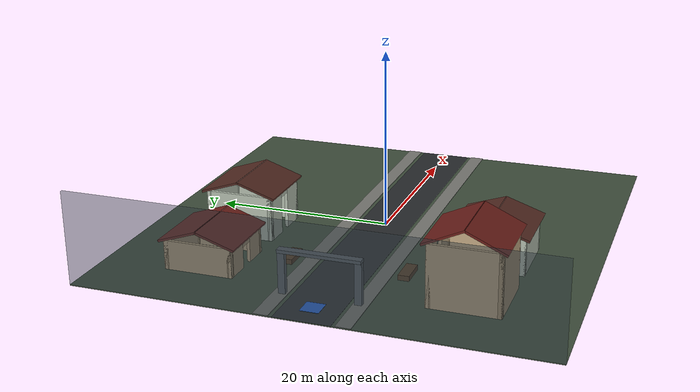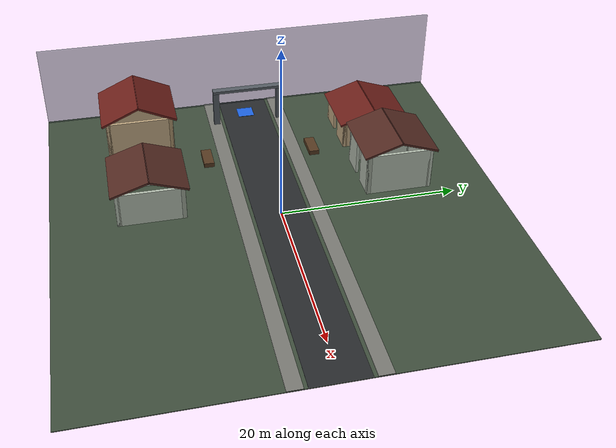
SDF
<sdf version="1.6">
 <world name="ego_residential_gable_50x50x10">
  <include><uri>model://sun</uri></include>
  <model name="community_floor">
   <static>true</static>
   <pose>0.000 0.000 -0.050 0 0 0</pose>
   <link name="link">
    <collision name="collision"><geometry><box><size>50.000 50.000 0.100</size></box></geometry></collision>
    <visual name="visual">
     <geometry><box><size>50.000 50.000 0.100</size></box></geometry>
     <material><ambient>0.250 0.310 0.240 1.000</ambient><diffuse>0.250 0.310 0.240 1.000</diffuse></material>
     <transparency>0.00</transparency>
    </visual>
   </link>
  </model>
  <model name="central_road">
   <static>true</static>
   <pose>0.000 0.000 0.010 0 0 0</pose>
   <link name="link">
    <collision name="collision"><geometry><box><size>50.000 6.000 0.020</size></box></geometry></collision>
    <visual name="visual">
     <geometry><box><size>50.000 6.000 0.020</size></box></geometry>
     <material><ambient>0.160 0.170 0.180 1.000</ambient><diffuse>0.160 0.170 0.180 1.000</diffuse></material>
     <transparency>0.00</transparency>
    </visual>
   </link>
  </model>
  <model name="north_sidewalk">
   <static>true</static>
   <pose>0.000 4.200 0.040 0 0 0</pose>
   <link name="link">
    <collision name="collision"><geometry><box><size>50.000 1.600 0.080</size></box></geometry></collision>
    <visual name="visual">
     <geometry><box><size>50.000 1.600 0.080</size></box></geometry>
     <material><ambient>0.480 0.480 0.460 1.000</ambient><diffuse>0.480 0.480 0.460 1.000</diffuse></material>
     <transparency>0.00</transparency>
    </visual>
   </link>
  </model>
  <model name="south_sidewalk">
   <static>true</static>
   <pose>0.000 -4.200 0.040 0 0 0</pose>
   <link name="link">
    <collision name="collision"><geometry><box><size>50.000 1.600 0.080</size></box></geometry></collision>
    <visual name="visual">
     <geometry><box><size>50.000 1.600 0.080</size></box></geometry>
     <material><ambient>0.480 0.480 0.460 1.000</ambient><diffuse>0.480 0.480 0.460 1.000</diffuse></material>
     <transparency>0.00</transparency>
    </visual>
   </link>
  </model>
  <model name="west_boundary">
   <static>true</static>
   <pose>-24.850 0.000 5.000 0 0 0</pose>
   <link name="link">
    <collision name="collision"><geometry><box><size>0.300 50.000 10.000</size></box></geometry></collision>
    <visual name="visual">
     <geometry><box><size>0.300 50.000 10.000</size></box></geometry>
     <material><ambient>0.200 0.250 0.280 1.000</ambient><diffuse>0.200 0.250 0.280 1.000</diffuse></material>
     <transparency>0.55</transparency>
    </visual>
   </link>
  </model>
  <model name="west_spawn_pad">
   <static>true</static>
   <pose>-22.000 0.000 0.030 0 0 0</pose>
   <link name="link">
    <collision name="collision"><geometry><box><size>2.000 2.000 0.060</size></box></geometry></collision>
    <visual name="visual">
     <geometry><box><size>2.000 2.000 0.060</size></box></geometry>
     <material><ambient>0.120 0.400 0.900 1.000</ambient><diffuse>0.120 0.400 0.900 1.000</diffuse></material>
     <transparency>0.00</transparency>
    </visual>
   </link>
  </model>
  <model name="west_gate_left_post">
   <static>true</static>
   <pose>-20.000 -4.000 2.250 0 0 0</pose>
   <link name="link">
    <collision name="collision"><geometry><box><size>0.550 0.750 4.500</size></box></geometry></collision>
    <visual name="visual">
     <geometry><box><size>0.550 0.750 4.500</size></box></geometry>
     <material><ambient>0.340 0.370 0.400 1.000</ambient><diffuse>0.340 0.370 0.400 1.000</diffuse></material>
     <transparency>0.00</transparency>
    </visual>
   </link>
  </model>
  <model name="west_gate_right_post">
   <static>true</static>
   <pose>-20.000 4.000 2.250 0 0 0</pose>
   <link name="link">
    <collision name="collision"><geometry><box><size>0.550 0.750 4.500</size></box></geometry></collision>
    <visual name="visual">
     <geometry><box><size>0.550 0.750 4.500</size></box></geometry>
     <material><ambient>0.340 0.370 0.400 1.000</ambient><diffuse>0.340 0.370 0.400 1.000</diffuse></material>
     <transparency>0.00</transparency>
    </visual>
   </link>
  </model>
  <model name="west_gate_roof">
   <static>true</static>
   <pose>-20.000 0.000 4.650 0 0 0</pose>
   <link name="link">
    <collision name="collision"><geometry><box><size>0.850 8.750 0.350</size></box></geometry></collision>
    <visual name="visual">
     <geometry><box><size>0.850 8.750 0.350</size></box></geometry>
     <material><ambient>0.340 0.370 0.400 1.000</ambient><diffuse>0.340 0.370 0.400 1.000</diffuse></material>
     <transparency>0.00</transparency>
    </visual>
   </link>
  </model>
  <model name="south_planter_1">
   <static>true</static>
   <pose>-12.000 -6.400 0.280 0 0 0</pose>
   <link name="link">
    <collision name="collision"><geometry><box><size>3.000 1.200 0.560</size></box></geometry></collision>
    <visual name="visual">
     <geometry><box><size>3.000 1.200 0.560</size></box></geometry>
     <material><ambient>0.340 0.230 0.130 1.000</ambient><diffuse>0.340 0.230 0.130 1.000</diffuse></material>
     <transparency>0.00</transparency>
    </visual>
   </link>
  </model>
  <model name="north_planter_1">
   <static>true</static>
   <pose>-12.000 6.400 0.280 0 0 0</pose>
   <link name="link">
    <collision name="collision"><geometry><box><size>3.000 1.200 0.560</size></box></geometry></collision>
    <visual name="visual">
     <geometry><box><size>3.000 1.200 0.560</size></box></geometry>
     <material><ambient>0.340 0.230 0.130 1.000</ambient><diffuse>0.340 0.230 0.130 1.000</diffuse></material>
     <transparency>0.00</transparency>
    </visual>
   </link>
  </model>
  <model name="residence_01">
   <static>true</static>
   <pose>-15.000 14.000 0 0 0 0</pose>
   <link name="building_link">
    <collision name="roof_north_collision">
     <pose>0.000 2.075 3.900 -0.325361 0.000000 0.000000</pose>
     <geometry><box><size>7.900 4.560 0.240</size></box></geometry>
    </collision>
    <visual name="roof_north_visual">
     <pose>0.000 2.075 3.900 -0.325361 0.000000 0.000000</pose>
     <geometry><box><size>7.900 4.560 0.240</size></box></geometry>
     <material><ambient>0.420 0.120 0.100 1.000</ambient><diffuse>0.420 0.120 0.100 1.000</diffuse></material>
    </visual>
    <collision name="roof_south_collision">
     <pose>0.000 -2.075 3.900 0.325361 0.000000 0.000000</pose>
     <geometry><box><size>7.900 4.560 0.240</size></box></geometry>
    </collision>
    <visual name="roof_south_visual">
     <pose>0.000 -2.075 3.900 0.325361 0.000000 0.000000</pose>
     <geometry><box><size>7.900 4.560 0.240</size></box></geometry>
     <material><ambient>0.420 0.120 0.100 1.000</ambient><diffuse>0.420 0.120 0.100 1.000</diffuse></material>
    </visual>
    <collision name="back_wall_collision">
     <pose>0.000 3.630 1.600 0.000000 0.000000 0.000000</pose>
     <geometry><box><size>7.200 0.340 3.200</size></box></geometry>
    </collision>
    <visual name="back_wall_visual">
     <pose>0.000 3.630 1.600 0.000000 0.000000 0.000000</pose>
     <geometry><box><size>7.200 0.340 3.200</size></box></geometry>
     <material><ambient>0.780 0.680 0.530 1.000</ambient><diffuse>0.780 0.680 0.530 1.000</diffuse></material>
    </visual>
    <collision name="left_wall_collision">
     <pose>-3.430 0.000 1.600 0.000000 0.000000 0.000000</pose>
     <geometry><box><size>0.340 7.600 3.200</size></box></geometry>
    </collision>
    <visual name="left_wall_visual">
     <pose>-3.430 0.000 1.600 0.000000 0.000000 0.000000</pose>
     <geometry><box><size>0.340 7.600 3.200</size></box></geometry>
     <material><ambient>0.780 0.680 0.530 1.000</ambient><diffuse>0.780 0.680 0.530 1.000</diffuse></material>
    </visual>
    <collision name="right_wall_collision">
     <pose>3.430 0.000 1.600 0.000000 0.000000 0.000000</pose>
     <geometry><box><size>0.340 7.600 3.200</size></box></geometry>
    </collision>
    <visual name="right_wall_visual">
     <pose>3.430 0.000 1.600 0.000000 0.000000 0.000000</pose>
     <geometry><box><size>0.340 7.600 3.200</size></box></geometry>
     <material><ambient>0.780 0.680 0.530 1.000</ambient><diffuse>0.780 0.680 0.530 1.000</diffuse></material>
    </visual>
    <collision name="front_left_collision">
     <pose>-2.200 -3.630 1.600 0.000000 0.000000 0.000000</pose>
     <geometry><box><size>2.800 0.340 3.200</size></box></geometry>
    </collision>
    <visual name="front_left_visual">
     <pose>-2.200 -3.630 1.600 0.000000 0.000000 0.000000</pose>
     <geometry><box><size>2.800 0.340 3.200</size></box></geometry>
     <material><ambient>0.780 0.680 0.530 1.000</ambient><diffuse>0.780 0.680 0.530 1.000</diffuse></material>
    </visual>
    <collision name="front_right_collision">
     <pose>2.200 -3.630 1.600 0.000000 0.000000 0.000000</pose>
     <geometry><box><size>2.800 0.340 3.200</size></box></geometry>
    </collision>
    <visual name="front_right_visual">
     <pose>2.200 -3.630 1.600 0.000000 0.000000 0.000000</pose>
     <geometry><box><size>2.800 0.340 3.200</size></box></geometry>
     <material><ambient>0.780 0.680 0.530 1.000</ambient><diffuse>0.780 0.680 0.530 1.000</diffuse></material>
    </visual>
    <collision name="door_lintel_collision">
     <pose>0.000 -3.630 2.750 0.000000 0.000000 0.000000</pose>
     <geometry><box><size>1.600 0.340 0.900</size></box></geometry>
    </collision>
    <visual name="door_lintel_visual">
     <pose>0.000 -3.630 2.750 0.000000 0.000000 0.000000</pose>
     <geometry><box><size>1.600 0.340 0.900</size></box></geometry>
     <material><ambient>0.780 0.680 0.530 1.000</ambient><diffuse>0.780 0.680 0.530 1.000</diffuse></material>
    </visual>
    <collision name="pillar_1_collision">
     <pose>-3.360 -3.560 1.600 0.000000 0.000000 0.000000</pose>
     <geometry><box><size>0.480 0.480 3.200</size></box></geometry>
    </collision>
    <visual name="pillar_1_visual">
     <pose>-3.360 -3.560 1.600 0.000000 0.000000 0.000000</pose>
     <geometry><box><size>0.480 0.480 3.200</size></box></geometry>
     <material><ambient>0.680 0.580 0.430 1.000</ambient><diffuse>0.680 0.580 0.430 1.000</diffuse></material>
    </visual>
    <collision name="pillar_2_collision">
     <pose>-3.360 3.560 1.600 0.000000 0.000000 0.000000</pose>
     <geometry><box><size>0.480 0.480 3.200</size></box></geometry>
    </collision>
    <visual name="pillar_2_visual">
     <pose>-3.360 3.560 1.600 0.000000 0.000000 0.000000</pose>
     <geometry><box><size>0.480 0.480 3.200</size></box></geometry>
     <material><ambient>0.680 0.580 0.430 1.000</ambient><diffuse>0.680 0.580 0.430 1.000</diffuse></material>
    </visual>
    <collision name="pillar_3_collision">
     <pose>3.360 -3.560 1.600 0.000000 0.000000 0.000000</pose>
     <geometry><box><size>0.480 0.480 3.200</size></box></geometry>
    </collision>
    <visual name="pillar_3_visual">
     <pose>3.360 -3.560 1.600 0.000000 0.000000 0.000000</pose>
     <geometry><box><size>0.480 0.480 3.200</size></box></geometry>
     <material><ambient>0.680 0.580 0.430 1.000</ambient><diffuse>0.680 0.580 0.430 1.000</diffuse></material>
    </visual>
    <collision name="pillar_4_collision">
     <pose>3.360 3.560 1.600 0.000000 0.000000 0.000000</pose>
     <geometry><box><size>0.480 0.480 3.200</size></box></geometry>
    </collision>
    <visual name="pillar_4_visual">
     <pose>3.360 3.560 1.600 0.000000 0.000000 0.000000</pose>
     <geometry><box><size>0.480 0.480 3.200</size></box></geometry>
     <material><ambient>0.680 0.580 0.430 1.000</ambient><diffuse>0.680 0.580 0.430 1.000</diffuse></material>
    </visual>
   </link>
  </model>
  <model name="residence_02">
   <static>true</static>
   <pose>-5.000 14.000 0 0 0 0</pose>
   <link name="building_link">
    <collision name="roof_north_collision">
     <pose>0.000 2.075 5.696 -0.327090 0.000000 0.000000</pose>
     <geometry><box><size>7.900 4.562 0.240</size></box></geometry>
    </collision>
    <visual name="roof_north_visual">
     <pose>0.000 2.075 5.696 -0.327090 0.000000 0.000000</pose>
     <geometry><box><size>7.900 4.562 0.240</size></box></geometry>
     <material><ambient>0.320 0.160 0.130 1.000</ambient><diffuse>0.320 0.160 0.130 1.000</diffuse></material>
    </visual>
    <collision name="roof_south_collision">
     <pose>0.000 -2.075 5.696 0.327090 0.000000 0.000000</pose>
     <geometry><box><size>7.900 4.562 0.240</size></box></geometry>
    </collision>
    <visual name="roof_south_visual">
     <pose>0.000 -2.075 5.696 0.327090 0.000000 0.000000</pose>
     <geometry><box><size>7.900 4.562 0.240</size></box></geometry>
     <material><ambient>0.320 0.160 0.130 1.000</ambient><diffuse>0.320 0.160 0.130 1.000</diffuse></material>
    </visual>
    <collision name="back_wall_collision">
     <pose>0.000 3.630 2.496 0.000000 0.000000 0.000000</pose>
     <geometry><box><size>7.200 0.340 4.992</size></box></geometry>
    </collision>
    <visual name="back_wall_visual">
     <pose>0.000 3.630 2.496 0.000000 0.000000 0.000000</pose>
     <geometry><box><size>7.200 0.340 4.992</size></box></geometry>
     <material><ambient>0.720 0.760 0.700 1.000</ambient><diffuse>0.720 0.760 0.700 1.000</diffuse></material>
    </visual>
    <collision name="left_wall_collision">
     <pose>-3.430 0.000 2.496 0.000000 0.000000 0.000000</pose>
     <geometry><box><size>0.340 7.600 4.992</size></box></geometry>
    </collision>
    <visual name="left_wall_visual">
     <pose>-3.430 0.000 2.496 0.000000 0.000000 0.000000</pose>
     <geometry><box><size>0.340 7.600 4.992</size></box></geometry>
     <material><ambient>0.720 0.760 0.700 1.000</ambient><diffuse>0.720 0.760 0.700 1.000</diffuse></material>
    </visual>
    <collision name="right_wall_collision">
     <pose>3.430 0.000 2.496 0.000000 0.000000 0.000000</pose>
     <geometry><box><size>0.340 7.600 4.992</size></box></geometry>
    </collision>
    <visual name="right_wall_visual">
     <pose>3.430 0.000 2.496 0.000000 0.000000 0.000000</pose>
     <geometry><box><size>0.340 7.600 4.992</size></box></geometry>
     <material><ambient>0.720 0.760 0.700 1.000</ambient><diffuse>0.720 0.760 0.700 1.000</diffuse></material>
    </visual>
    <collision name="front_left_collision">
     <pose>-2.200 -3.630 2.496 0.000000 0.000000 0.000000</pose>
     <geometry><box><size>2.800 0.340 4.992</size></box></geometry>
    </collision>
    <visual name="front_left_visual">
     <pose>-2.200 -3.630 2.496 0.000000 0.000000 0.000000</pose>
     <geometry><box><size>2.800 0.340 4.992</size></box></geometry>
     <material><ambient>0.720 0.760 0.700 1.000</ambient><diffuse>0.720 0.760 0.700 1.000</diffuse></material>
    </visual>
    <collision name="front_right_collision">
     <pose>2.200 -3.630 2.496 0.000000 0.000000 0.000000</pose>
     <geometry><box><size>2.800 0.340 4.992</size></box></geometry>
    </collision>
    <visual name="front_right_visual">
     <pose>2.200 -3.630 2.496 0.000000 0.000000 0.000000</pose>
     <geometry><box><size>2.800 0.340 4.992</size></box></geometry>
     <material><ambient>0.720 0.760 0.700 1.000</ambient><diffuse>0.720 0.760 0.700 1.000</diffuse></material>
    </visual>
    <collision name="door_lintel_collision">
     <pose>0.000 -3.630 4.542 0.000000 0.000000 0.000000</pose>
     <geometry><box><size>1.600 0.340 0.900</size></box></geometry>
    </collision>
    <visual name="door_lintel_visual">
     <pose>0.000 -3.630 4.542 0.000000 0.000000 0.000000</pose>
     <geometry><box><size>1.600 0.340 0.900</size></box></geometry>
     <material><ambient>0.720 0.760 0.700 1.000</ambient><diffuse>0.720 0.760 0.700 1.000</diffuse></material>
    </visual>
    <collision name="pillar_1_collision">
     <pose>-3.360 -3.560 2.496 0.000000 0.000000 0.000000</pose>
     <geometry><box><size>0.480 0.480 4.992</size></box></geometry>
    </collision>
    <visual name="pillar_1_visual">
     <pose>-3.360 -3.560 2.496 0.000000 0.000000 0.000000</pose>
     <geometry><box><size>0.480 0.480 4.992</size></box></geometry>
     <material><ambient>0.620 0.660 0.600 1.000</ambient><diffuse>0.620 0.660 0.600 1.000</diffuse></material>
    </visual>
    <collision name="pillar_2_collision">
     <pose>-3.360 3.560 2.496 0.000000 0.000000 0.000000</pose>
     <geometry><box><size>0.480 0.480 4.992</size></box></geometry>
    </collision>
    <visual name="pillar_2_visual">
     <pose>-3.360 3.560 2.496 0.000000 0.000000 0.000000</pose>
     <geometry><box><size>0.480 0.480 4.992</size></box></geometry>
     <material><ambient>0.620 0.660 0.600 1.000</ambient><diffuse>0.620 0.660 0.600 1.000</diffuse></material>
    </visual>
    <collision name="pillar_3_collision">
     <pose>3.360 -3.560 2.496 0.000000 0.000000 0.000000</pose>
     <geometry><box><size>0.480 0.480 4.992</size></box></geometry>
    </collision>
    <visual name="pillar_3_visual">
     <pose>3.360 -3.560 2.496 0.000000 0.000000 0.000000</pose>
     <geometry><box><size>0.480 0.480 4.992</size></box></geometry>
     <material><ambient>0.620 0.660 0.600 1.000</ambient><diffuse>0.620 0.660 0.600 1.000</diffuse></material>
    </visual>
    <collision name="pillar_4_collision">
     <pose>3.360 3.560 2.496 0.000000 0.000000 0.000000</pose>
     <geometry><box><size>0.480 0.480 4.992</size></box></geometry>
    </collision>
    <visual name="pillar_4_visual">
     <pose>3.360 3.560 2.496 0.000000 0.000000 0.000000</pose>
     <geometry><box><size>0.480 0.480 4.992</size></box></geometry>
     <material><ambient>0.620 0.660 0.600 1.000</ambient><diffuse>0.620 0.660 0.600 1.000</diffuse></material>
    </visual>
   </link>
  </model>
  <model name="residence_05">
   <static>true</static>
   <pose>-15.000 -14.000 0 0 0 0</pose>
   <link name="building_link">
    <collision name="roof_north_collision">
     <pose>0.000 2.075 7.654 -0.427753 0.000000 0.000000</pose>
     <geometry><box><size>7.900 4.741 0.240</size></box></geometry>
    </collision>
    <visual name="roof_north_visual">
     <pose>0.000 2.075 7.654 -0.427753 0.000000 0.000000</pose>
     <geometry><box><size>7.900 4.741 0.240</size></box></geometry>
     <material><ambient>0.420 0.120 0.100 1.000</ambient><diffuse>0.420 0.120 0.100 1.000</diffuse></material>
    </visual>
    <collision name="roof_south_collision">
     <pose>0.000 -2.075 7.654 0.427753 0.000000 0.000000</pose>
     <geometry><box><size>7.900 4.741 0.240</size></box></geometry>
    </collision>
    <visual name="roof_south_visual">
     <pose>0.000 -2.075 7.654 0.427753 0.000000 0.000000</pose>
     <geometry><box><size>7.900 4.741 0.240</size></box></geometry>
     <material><ambient>0.420 0.120 0.100 1.000</ambient><diffuse>0.420 0.120 0.100 1.000</diffuse></material>
    </visual>
    <collision name="back_wall_collision">
     <pose>0.000 -3.630 3.354 0.000000 0.000000 0.000000</pose>
     <geometry><box><size>7.200 0.340 6.708</size></box></geometry>
    </collision>
    <visual name="back_wall_visual">
     <pose>0.000 -3.630 3.354 0.000000 0.000000 0.000000</pose>
     <geometry><box><size>7.200 0.340 6.708</size></box></geometry>
     <material><ambient>0.780 0.680 0.530 1.000</ambient><diffuse>0.780 0.680 0.530 1.000</diffuse></material>
    </visual>
    <collision name="left_wall_collision">
     <pose>-3.430 0.000 3.354 0.000000 0.000000 0.000000</pose>
     <geometry><box><size>0.340 7.600 6.708</size></box></geometry>
    </collision>
    <visual name="left_wall_visual">
     <pose>-3.430 0.000 3.354 0.000000 0.000000 0.000000</pose>
     <geometry><box><size>0.340 7.600 6.708</size></box></geometry>
     <material><ambient>0.780 0.680 0.530 1.000</ambient><diffuse>0.780 0.680 0.530 1.000</diffuse></material>
    </visual>
    <collision name="right_wall_collision">
     <pose>3.430 0.000 3.354 0.000000 0.000000 0.000000</pose>
     <geometry><box><size>0.340 7.600 6.708</size></box></geometry>
    </collision>
    <visual name="right_wall_visual">
     <pose>3.430 0.000 3.354 0.000000 0.000000 0.000000</pose>
     <geometry><box><size>0.340 7.600 6.708</size></box></geometry>
     <material><ambient>0.780 0.680 0.530 1.000</ambient><diffuse>0.780 0.680 0.530 1.000</diffuse></material>
    </visual>
    <collision name="front_left_collision">
     <pose>-2.200 3.630 3.354 0.000000 0.000000 0.000000</pose>
     <geometry><box><size>2.800 0.340 6.708</size></box></geometry>
    </collision>
    <visual name="front_left_visual">
     <pose>-2.200 3.630 3.354 0.000000 0.000000 0.000000</pose>
     <geometry><box><size>2.800 0.340 6.708</size></box></geometry>
     <material><ambient>0.780 0.680 0.530 1.000</ambient><diffuse>0.780 0.680 0.530 1.000</diffuse></material>
    </visual>
    <collision name="front_right_collision">
     <pose>2.200 3.630 3.354 0.000000 0.000000 0.000000</pose>
     <geometry><box><size>2.800 0.340 6.708</size></box></geometry>
    </collision>
    <visual name="front_right_visual">
     <pose>2.200 3.630 3.354 0.000000 0.000000 0.000000</pose>
     <geometry><box><size>2.800 0.340 6.708</size></box></geometry>
     <material><ambient>0.780 0.680 0.530 1.000</ambient><diffuse>0.780 0.680 0.530 1.000</diffuse></material>
    </visual>
    <collision name="door_lintel_collision">
     <pose>0.000 3.630 6.258 0.000000 0.000000 0.000000</pose>
     <geometry><box><size>1.600 0.340 0.900</size></box></geometry>
    </collision>
    <visual name="door_lintel_visual">
     <pose>0.000 3.630 6.258 0.000000 0.000000 0.000000</pose>
     <geometry><box><size>1.600 0.340 0.900</size></box></geometry>
     <material><ambient>0.780 0.680 0.530 1.000</ambient><diffuse>0.780 0.680 0.530 1.000</diffuse></material>
    </visual>
    <collision name="pillar_1_collision">
     <pose>-3.360 -3.560 3.354 0.000000 0.000000 0.000000</pose>
     <geometry><box><size>0.480 0.480 6.708</size></box></geometry>
    </collision>
    <visual name="pillar_1_visual">
     <pose>-3.360 -3.560 3.354 0.000000 0.000000 0.000000</pose>
     <geometry><box><size>0.480 0.480 6.708</size></box></geometry>
     <material><ambient>0.680 0.580 0.430 1.000</ambient><diffuse>0.680 0.580 0.430 1.000</diffuse></material>
    </visual>
    <collision name="pillar_2_collision">
     <pose>-3.360 3.560 3.354 0.000000 0.000000 0.000000</pose>
     <geometry><box><size>0.480 0.480 6.708</size></box></geometry>
    </collision>
    <visual name="pillar_2_visual">
     <pose>-3.360 3.560 3.354 0.000000 0.000000 0.000000</pose>
     <geometry><box><size>0.480 0.480 6.708</size></box></geometry>
     <material><ambient>0.680 0.580 0.430 1.000</ambient><diffuse>0.680 0.580 0.430 1.000</diffuse></material>
    </visual>
    <collision name="pillar_3_collision">
     <pose>3.360 -3.560 3.354 0.000000 0.000000 0.000000</pose>
     <geometry><box><size>0.480 0.480 6.708</size></box></geometry>
    </collision>
    <visual name="pillar_3_visual">
     <pose>3.360 -3.560 3.354 0.000000 0.000000 0.000000</pose>
     <geometry><box><size>0.480 0.480 6.708</size></box></geometry>
     <material><ambient>0.680 0.580 0.430 1.000</ambient><diffuse>0.680 0.580 0.430 1.000</diffuse></material>
    </visual>
    <collision name="pillar_4_collision">
     <pose>3.360 3.560 3.354 0.000000 0.000000 0.000000</pose>
     <geometry><box><size>0.480 0.480 6.708</size></box></geometry>
    </collision>
    <visual name="pillar_4_visual">
     <pose>3.360 3.560 3.354 0.000000 0.000000 0.000000</pose>
     <geometry><box><size>0.480 0.480 6.708</size></box></geometry>
     <material><ambient>0.680 0.580 0.430 1.000</ambient><diffuse>0.680 0.580 0.430 1.000</diffuse></material>
    </visual>
   </link>
  </model>
  <model name="residence_06">
   <static>true</static>
   <pose>-5.000 -14.000 0 0 0 0</pose>
   <link name="building_link">
    <collision name="roof_north_collision">
     <pose>0.000 2.075 4.700 -0.325361 0.000000 0.000000</pose>
     <geometry><box><size>7.900 4.560 0.240</size></box></geometry>
    </collision>
    <visual name="roof_north_visual">
     <pose>0.000 2.075 4.700 -0.325361 0.000000 0.000000</pose>
     <geometry><box><size>7.900 4.560 0.240</size></box></geometry>
     <material><ambient>0.320 0.160 0.130 1.000</ambient><diffuse>0.320 0.160 0.130 1.000</diffuse></material>
    </visual>
    <collision name="roof_south_collision">
     <pose>0.000 -2.075 4.700 0.325361 0.000000 0.000000</pose>
     <geometry><box><size>7.900 4.560 0.240</size></box></geometry>
    </collision>
    <visual name="roof_south_visual">
     <pose>0.000 -2.075 4.700 0.325361 0.000000 0.000000</pose>
     <geometry><box><size>7.900 4.560 0.240</size></box></geometry>
     <material><ambient>0.320 0.160 0.130 1.000</ambient><diffuse>0.320 0.160 0.130 1.000</diffuse></material>
    </visual>
    <collision name="back_wall_collision">
     <pose>0.000 -3.630 2.000 0.000000 0.000000 0.000000</pose>
     <geometry><box><size>7.200 0.340 4.000</size></box></geometry>
    </collision>
    <visual name="back_wall_visual">
     <pose>0.000 -3.630 2.000 0.000000 0.000000 0.000000</pose>
     <geometry><box><size>7.200 0.340 4.000</size></box></geometry>
     <material><ambient>0.720 0.760 0.700 1.000</ambient><diffuse>0.720 0.760 0.700 1.000</diffuse></material>
    </visual>
    <collision name="left_wall_collision">
     <pose>-3.430 0.000 2.000 0.000000 0.000000 0.000000</pose>
     <geometry><box><size>0.340 7.600 4.000</size></box></geometry>
    </collision>
    <visual name="left_wall_visual">
     <pose>-3.430 0.000 2.000 0.000000 0.000000 0.000000</pose>
     <geometry><box><size>0.340 7.600 4.000</size></box></geometry>
     <material><ambient>0.720 0.760 0.700 1.000</ambient><diffuse>0.720 0.760 0.700 1.000</diffuse></material>
    </visual>
    <collision name="right_wall_collision">
     <pose>3.430 0.000 2.000 0.000000 0.000000 0.000000</pose>
     <geometry><box><size>0.340 7.600 4.000</size></box></geometry>
    </collision>
    <visual name="right_wall_visual">
     <pose>3.430 0.000 2.000 0.000000 0.000000 0.000000</pose>
     <geometry><box><size>0.340 7.600 4.000</size></box></geometry>
     <material><ambient>0.720 0.760 0.700 1.000</ambient><diffuse>0.720 0.760 0.700 1.000</diffuse></material>
    </visual>
    <collision name="front_left_collision">
     <pose>-2.200 3.630 2.000 0.000000 0.000000 0.000000</pose>
     <geometry><box><size>2.800 0.340 4.000</size></box></geometry>
    </collision>
    <visual name="front_left_visual">
     <pose>-2.200 3.630 2.000 0.000000 0.000000 0.000000</pose>
     <geometry><box><size>2.800 0.340 4.000</size></box></geometry>
     <material><ambient>0.720 0.760 0.700 1.000</ambient><diffuse>0.720 0.760 0.700 1.000</diffuse></material>
    </visual>
    <collision name="front_right_collision">
     <pose>2.200 3.630 2.000 0.000000 0.000000 0.000000</pose>
     <geometry><box><size>2.800 0.340 4.000</size></box></geometry>
    </collision>
    <visual name="front_right_visual">
     <pose>2.200 3.630 2.000 0.000000 0.000000 0.000000</pose>
     <geometry><box><size>2.800 0.340 4.000</size></box></geometry>
     <material><ambient>0.720 0.760 0.700 1.000</ambient><diffuse>0.720 0.760 0.700 1.000</diffuse></material>
    </visual>
    <collision name="door_lintel_collision">
     <pose>0.000 3.630 3.550 0.000000 0.000000 0.000000</pose>
     <geometry><box><size>1.600 0.340 0.900</size></box></geometry>
    </collision>
    <visual name="door_lintel_visual">
     <pose>0.000 3.630 3.550 0.000000 0.000000 0.000000</pose>
     <geometry><box><size>1.600 0.340 0.900</size></box></geometry>
     <material><ambient>0.720 0.760 0.700 1.000</ambient><diffuse>0.720 0.760 0.700 1.000</diffuse></material>
    </visual>
    <collision name="pillar_1_collision">
     <pose>-3.360 -3.560 2.000 0.000000 0.000000 0.000000</pose>
     <geometry><box><size>0.480 0.480 4.000</size></box></geometry>
    </collision>
    <visual name="pillar_1_visual">
     <pose>-3.360 -3.560 2.000 0.000000 0.000000 0.000000</pose>
     <geometry><box><size>0.480 0.480 4.000</size></box></geometry>
     <material><ambient>0.620 0.660 0.600 1.000</ambient><diffuse>0.620 0.660 0.600 1.000</diffuse></material>
    </visual>
    <collision name="pillar_2_collision">
     <pose>-3.360 3.560 2.000 0.000000 0.000000 0.000000</pose>
     <geometry><box><size>0.480 0.480 4.000</size></box></geometry>
    </collision>
    <visual name="pillar_2_visual">
     <pose>-3.360 3.560 2.000 0.000000 0.000000 0.000000</pose>
     <geometry><box><size>0.480 0.480 4.000</size></box></geometry>
     <material><ambient>0.620 0.660 0.600 1.000</ambient><diffuse>0.620 0.660 0.600 1.000</diffuse></material>
    </visual>
    <collision name="pillar_3_collision">
     <pose>3.360 -3.560 2.000 0.000000 0.000000 0.000000</pose>
     <geometry><box><size>0.480 0.480 4.000</size></box></geometry>
    </collision>
    <visual name="pillar_3_visual">
     <pose>3.360 -3.560 2.000 0.000000 0.000000 0.000000</pose>
     <geometry><box><size>0.480 0.480 4.000</size></box></geometry>
     <material><ambient>0.620 0.660 0.600 1.000</ambient><diffuse>0.620 0.660 0.600 1.000</diffuse></material>
    </visual>
    <collision name="pillar_4_collision">
     <pose>3.360 3.560 2.000 0.000000 0.000000 0.000000</pose>
     <geometry><box><size>0.480 0.480 4.000</size></box></geometry>
    </collision>
    <visual name="pillar_4_visual">
     <pose>3.360 3.560 2.000 0.000000 0.000000 0.000000</pose>
     <geometry><box><size>0.480 0.480 4.000</size></box></geometry>
     <material><ambient>0.620 0.660 0.600 1.000</ambient><diffuse>0.620 0.660 0.600 1.000</diffuse></material>
    </visual>
   </link>
  </model>
 </world>
</sdf>
